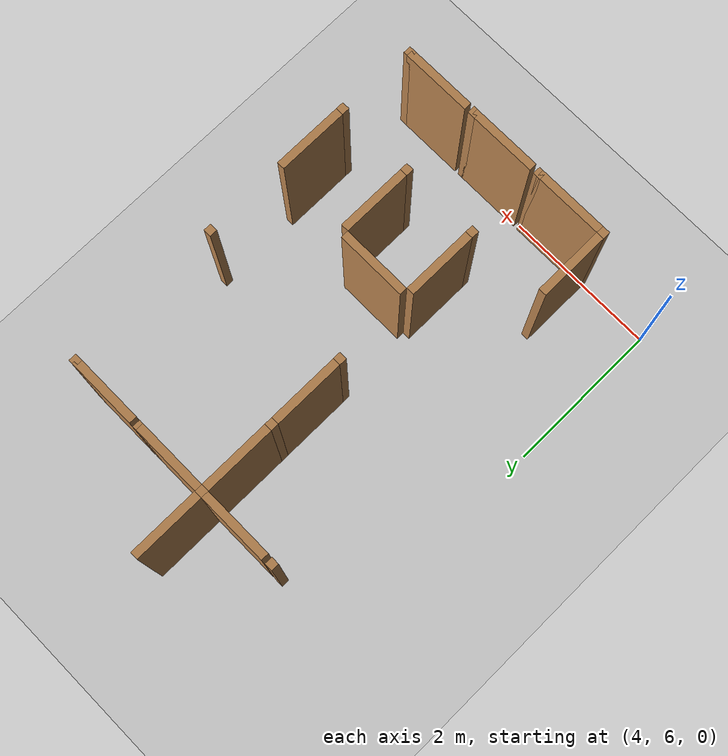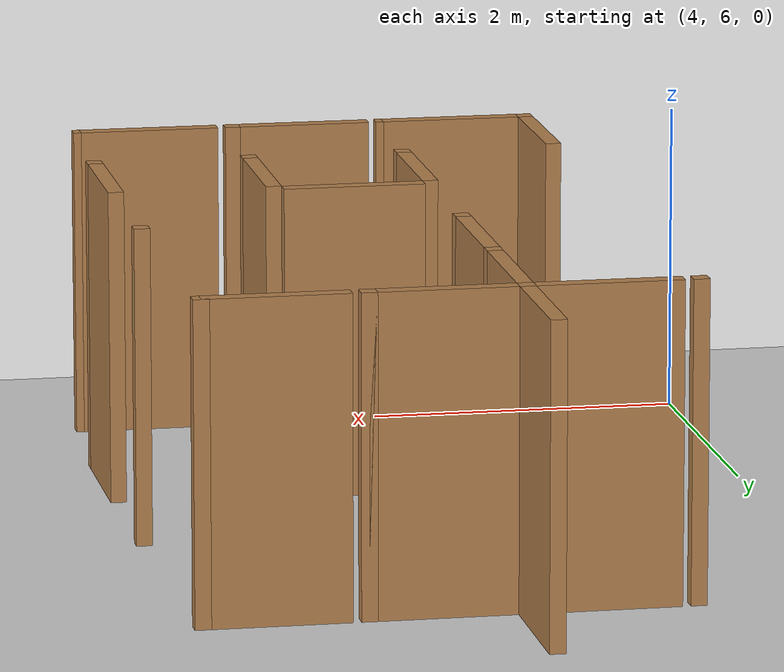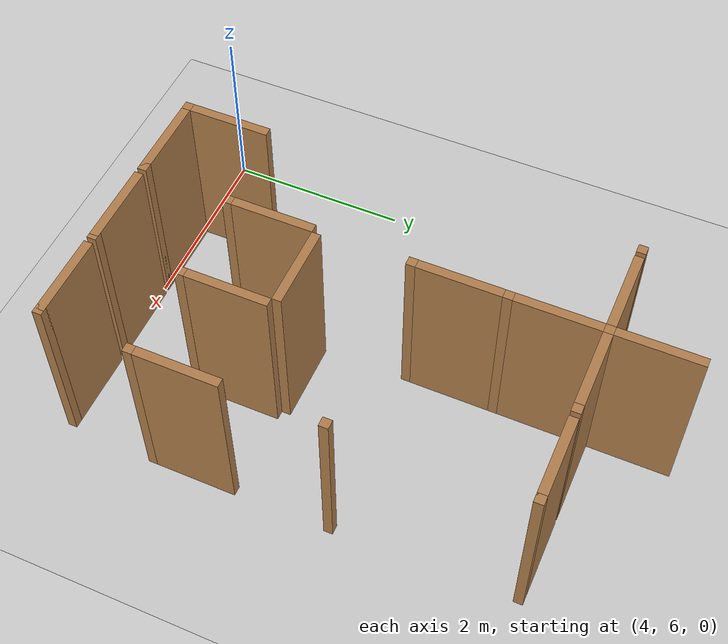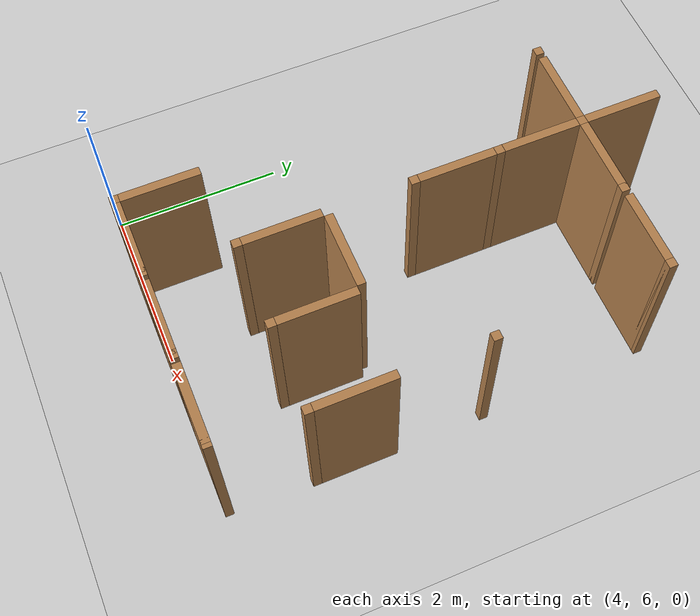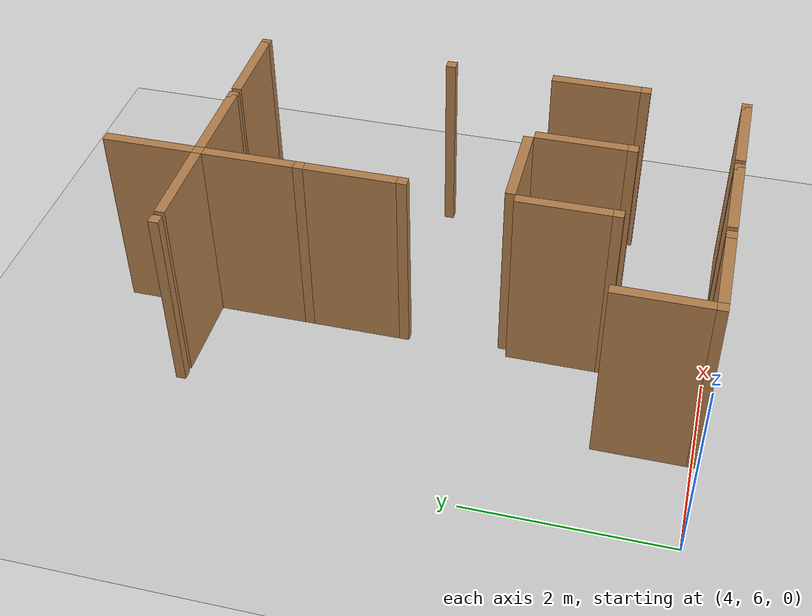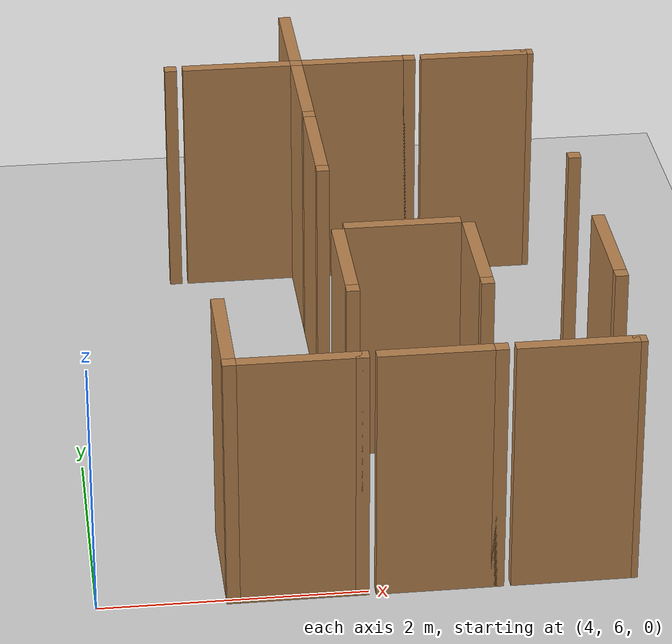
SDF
<sdf version="1.6">
 <world name="default">
  <include><uri>model://sun</uri></include>
  <model name="ground_plane">
   <static>true</static>
   <link name="link">
    <collision name="collision"><geometry><plane><size>12.0 12.0</size></plane></geometry></collision>
    <visual name="visual">
     <cast_shadows>false</cast_shadows>
     <geometry><plane><size>12.0 12.0</size></plane></geometry>
     <material>
      <script><uri>file://media/materials/scripts/gazebo.material</uri><name>Gazebo/Grey</name></script>
     </material>
    </visual>
   </link>
   <pose>6.0 6.0 0 0 0 0</pose>
  </model>
  <model name="vwall_6_5">
   <pose>5.0 6.5 1.0 0 0 0</pose>
   <link name="link">
    <collision name="collision"><geometry><box><size>0.1 0.9 2</size></box></geometry></collision>
    <visual name="visual">
     <geometry><box><size>0.1 0.9 2</size></box></geometry>
     <material>
      <script><uri>file://media/materials/scripts/gazebo.material</uri><name>Gazebo/Wood</name></script>
     </material>
    </visual>
   </link>
  </model>
  <model name="joint_5.0_6.0">
   <pose>5.0 6.0 1.0 0 0 0</pose>
   <link name="link">
    <collision name="collision"><geometry><box><size>0.1 0.1 2</size></box></geometry></collision>
    <visual name="visual">
     <geometry><box><size>0.1 0.1 2</size></box></geometry>
     <material>
      <script><uri>file://media/materials/scripts/gazebo.material</uri><name>Gazebo/Wood</name></script>
     </material>
    </visual>
   </link>
  </model>
  <model name="vwall_7_6">
   <pose>6.0 7.5 1.0 0 0 0</pose>
   <link name="link">
    <collision name="collision"><geometry><box><size>0.1 0.9 2</size></box></geometry></collision>
    <visual name="visual">
     <geometry><box><size>0.1 0.9 2</size></box></geometry>
     <material>
      <script><uri>file://media/materials/scripts/gazebo.material</uri><name>Gazebo/Wood</name></script>
     </material>
    </visual>
   </link>
  </model>
  <model name="joint_6.0_7.0">
   <pose>6.0 7.0 1.0 0 0 0</pose>
   <link name="link">
    <collision name="collision"><geometry><box><size>0.1 0.1 2</size></box></geometry></collision>
    <visual name="visual">
     <geometry><box><size>0.1 0.1 2</size></box></geometry>
     <material>
      <script><uri>file://media/materials/scripts/gazebo.material</uri><name>Gazebo/Wood</name></script>
     </material>
    </visual>
   </link>
  </model>
  <model name="vwall_7_7">
   <pose>7.0 7.5 1.0 0 0 0</pose>
   <link name="link">
    <collision name="collision"><geometry><box><size>0.1 0.9 2</size></box></geometry></collision>
    <visual name="visual">
     <geometry><box><size>0.1 0.9 2</size></box></geometry>
     <material>
      <script><uri>file://media/materials/scripts/gazebo.material</uri><name>Gazebo/Wood</name></script>
     </material>
    </visual>
   </link>
  </model>
  <model name="joint_7.0_7.0">
   <pose>7.0 7.0 1.0 0 0 0</pose>
   <link name="link">
    <collision name="collision"><geometry><box><size>0.1 0.1 2</size></box></geometry></collision>
    <visual name="visual">
     <geometry><box><size>0.1 0.1 2</size></box></geometry>
     <material>
      <script><uri>file://media/materials/scripts/gazebo.material</uri><name>Gazebo/Wood</name></script>
     </material>
    </visual>
   </link>
  </model>
  <model name="vwall_7_8">
   <pose>8.0 7.5 1.0 0 0 0</pose>
   <link name="link">
    <collision name="collision"><geometry><box><size>0.1 0.9 2</size></box></geometry></collision>
    <visual name="visual">
     <geometry><box><size>0.1 0.9 2</size></box></geometry>
     <material>
      <script><uri>file://media/materials/scripts/gazebo.material</uri><name>Gazebo/Wood</name></script>
     </material>
    </visual>
   </link>
  </model>
  <model name="joint_8.0_7.0">
   <pose>8.0 7.0 1.0 0 0 0</pose>
   <link name="link">
    <collision name="collision"><geometry><box><size>0.1 0.1 2</size></box></geometry></collision>
    <visual name="visual">
     <geometry><box><size>0.1 0.1 2</size></box></geometry>
     <material>
      <script><uri>file://media/materials/scripts/gazebo.material</uri><name>Gazebo/Wood</name></script>
     </material>
    </visual>
   </link>
  </model>
  <model name="vwall_9_6">
   <pose>6.0 9.5 1.0 0 0 0</pose>
   <link name="link">
    <collision name="collision"><geometry><box><size>0.1 0.9 2</size></box></geometry></collision>
    <visual name="visual">
     <geometry><box><size>0.1 0.9 2</size></box></geometry>
     <material>
      <script><uri>file://media/materials/scripts/gazebo.material</uri><name>Gazebo/Wood</name></script>
     </material>
    </visual>
   </link>
  </model>
  <model name="joint_6.0_9.0">
   <pose>6.0 9.0 1.0 0 0 0</pose>
   <link name="link">
    <collision name="collision"><geometry><box><size>0.1 0.1 2</size></box></geometry></collision>
    <visual name="visual">
     <geometry><box><size>0.1 0.1 2</size></box></geometry>
     <material>
      <script><uri>file://media/materials/scripts/gazebo.material</uri><name>Gazebo/Wood</name></script>
     </material>
    </visual>
   </link>
  </model>
  <model name="joint_8.0_9.0">
   <pose>8.0 9.0 1.0 0 0 0</pose>
   <link name="link">
    <collision name="collision"><geometry><box><size>0.1 0.1 2</size></box></geometry></collision>
    <visual name="visual">
     <geometry><box><size>0.1 0.1 2</size></box></geometry>
     <material>
      <script><uri>file://media/materials/scripts/gazebo.material</uri><name>Gazebo/Wood</name></script>
     </material>
    </visual>
   </link>
  </model>
  <model name="vwall_10_6">
   <pose>6.0 10.5 1.0 0 0 0</pose>
   <link name="link">
    <collision name="collision"><geometry><box><size>0.1 0.9 2</size></box></geometry></collision>
    <visual name="visual">
     <geometry><box><size>0.1 0.9 2</size></box></geometry>
     <material>
      <script><uri>file://media/materials/scripts/gazebo.material</uri><name>Gazebo/Wood</name></script>
     </material>
    </visual>
   </link>
  </model>
  <model name="joint_6.0_10.0">
   <pose>6.0 10.0 1.0 0 0 0</pose>
   <link name="link">
    <collision name="collision"><geometry><box><size>0.1 0.1 2</size></box></geometry></collision>
    <visual name="visual">
     <geometry><box><size>0.1 0.1 2</size></box></geometry>
     <material>
      <script><uri>file://media/materials/scripts/gazebo.material</uri><name>Gazebo/Wood</name></script>
     </material>
    </visual>
   </link>
  </model>
  <model name="vwall_11_6">
   <pose>6.0 11.5 1.0 0 0 0</pose>
   <link name="link">
    <collision name="collision"><geometry><box><size>0.1 0.9 2</size></box></geometry></collision>
    <visual name="visual">
     <geometry><box><size>0.1 0.9 2</size></box></geometry>
     <material>
      <script><uri>file://media/materials/scripts/gazebo.material</uri><name>Gazebo/Wood</name></script>
     </material>
    </visual>
   </link>
  </model>
  <model name="joint_6.0_11.0">
   <pose>6.0 11.0 1.0 0 0 0</pose>
   <link name="link">
    <collision name="collision"><geometry><box><size>0.1 0.1 2</size></box></geometry></collision>
    <visual name="visual">
     <geometry><box><size>0.1 0.1 2</size></box></geometry>
     <material>
      <script><uri>file://media/materials/scripts/gazebo.material</uri><name>Gazebo/Wood</name></script>
     </material>
    </visual>
   </link>
  </model>
  <model name="hwall_6_5">
   <pose>5.5 6.0 1.0 0 0 0</pose>
   <link name="link">
    <collision name="collision"><geometry><box><size>0.9 0.1 2</size></box></geometry></collision>
    <visual name="visual">
     <geometry><box><size>0.9 0.1 2</size></box></geometry>
     <material>
      <script><uri>file://media/materials/scripts/gazebo.material</uri><name>Gazebo/Wood</name></script>
     </material>
    </visual>
   </link>
  </model>
  <model name="joint_5.95_6.0">
   <pose>5.95 6.0 1.0 0 0 0</pose>
   <link name="link">
    <collision name="collision"><geometry><box><size>0.1 0.1 2</size></box></geometry></collision>
    <visual name="visual">
     <geometry><box><size>0.1 0.1 2</size></box></geometry>
     <material>
      <script><uri>file://media/materials/scripts/gazebo.material</uri><name>Gazebo/Wood</name></script>
     </material>
    </visual>
   </link>
  </model>
  <model name="hwall_6_6">
   <pose>6.5 6.0 1.0 0 0 0</pose>
   <link name="link">
    <collision name="collision"><geometry><box><size>0.9 0.1 2</size></box></geometry></collision>
    <visual name="visual">
     <geometry><box><size>0.9 0.1 2</size></box></geometry>
     <material>
      <script><uri>file://media/materials/scripts/gazebo.material</uri><name>Gazebo/Wood</name></script>
     </material>
    </visual>
   </link>
  </model>
  <model name="joint_6.95_6.0">
   <pose>6.95 6.0 1.0 0 0 0</pose>
   <link name="link">
    <collision name="collision"><geometry><box><size>0.1 0.1 2</size></box></geometry></collision>
    <visual name="visual">
     <geometry><box><size>0.1 0.1 2</size></box></geometry>
     <material>
      <script><uri>file://media/materials/scripts/gazebo.material</uri><name>Gazebo/Wood</name></script>
     </material>
    </visual>
   </link>
  </model>
  <model name="hwall_6_7">
   <pose>7.5 6.0 1.0 0 0 0</pose>
   <link name="link">
    <collision name="collision"><geometry><box><size>0.9 0.1 2</size></box></geometry></collision>
    <visual name="visual">
     <geometry><box><size>0.9 0.1 2</size></box></geometry>
     <material>
      <script><uri>file://media/materials/scripts/gazebo.material</uri><name>Gazebo/Wood</name></script>
     </material>
    </visual>
   </link>
  </model>
  <model name="joint_7.95_6.0">
   <pose>7.95 6.0 1.0 0 0 0</pose>
   <link name="link">
    <collision name="collision"><geometry><box><size>0.1 0.1 2</size></box></geometry></collision>
    <visual name="visual">
     <geometry><box><size>0.1 0.1 2</size></box></geometry>
     <material>
      <script><uri>file://media/materials/scripts/gazebo.material</uri><name>Gazebo/Wood</name></script>
     </material>
    </visual>
   </link>
  </model>
  <model name="hwall_8_6">
   <pose>6.5 8.0 1.0 0 0 0</pose>
   <link name="link">
    <collision name="collision"><geometry><box><size>0.9 0.1 2</size></box></geometry></collision>
    <visual name="visual">
     <geometry><box><size>0.9 0.1 2</size></box></geometry>
     <material>
      <script><uri>file://media/materials/scripts/gazebo.material</uri><name>Gazebo/Wood</name></script>
     </material>
    </visual>
   </link>
  </model>
  <model name="joint_4.95_11.0">
   <pose>4.95 11.0 1.0 0 0 0</pose>
   <link name="link">
    <collision name="collision"><geometry><box><size>0.1 0.1 2</size></box></geometry></collision>
    <visual name="visual">
     <geometry><box><size>0.1 0.1 2</size></box></geometry>
     <material>
      <script><uri>file://media/materials/scripts/gazebo.material</uri><name>Gazebo/Wood</name></script>
     </material>
    </visual>
   </link>
  </model>
  <model name="hwall_11_5">
   <pose>5.5 11.0 1.0 0 0 0</pose>
   <link name="link">
    <collision name="collision"><geometry><box><size>0.9 0.1 2</size></box></geometry></collision>
    <visual name="visual">
     <geometry><box><size>0.9 0.1 2</size></box></geometry>
     <material>
      <script><uri>file://media/materials/scripts/gazebo.material</uri><name>Gazebo/Wood</name></script>
     </material>
    </visual>
   </link>
  </model>
  <model name="hwall_11_6">
   <pose>6.5 11.0 1.0 0 0 0</pose>
   <link name="link">
    <collision name="collision"><geometry><box><size>0.9 0.1 2</size></box></geometry></collision>
    <visual name="visual">
     <geometry><box><size>0.9 0.1 2</size></box></geometry>
     <material>
      <script><uri>file://media/materials/scripts/gazebo.material</uri><name>Gazebo/Wood</name></script>
     </material>
    </visual>
   </link>
  </model>
  <model name="joint_6.95_11.0">
   <pose>6.95 11.0 1.0 0 0 0</pose>
   <link name="link">
    <collision name="collision"><geometry><box><size>0.1 0.1 2</size></box></geometry></collision>
    <visual name="visual">
     <geometry><box><size>0.1 0.1 2</size></box></geometry>
     <material>
      <script><uri>file://media/materials/scripts/gazebo.material</uri><name>Gazebo/Wood</name></script>
     </material>
    </visual>
   </link>
  </model>
  <model name="hwall_11_7">
   <pose>7.5 11.0 1.0 0 0 0</pose>
   <link name="link">
    <collision name="collision"><geometry><box><size>0.9 0.1 2</size></box></geometry></collision>
    <visual name="visual">
     <geometry><box><size>0.9 0.1 2</size></box></geometry>
     <material>
      <script><uri>file://media/materials/scripts/gazebo.material</uri><name>Gazebo/Wood</name></script>
     </material>
    </visual>
   </link>
  </model>
  <model name="joint_7.95_11.0">
   <pose>7.95 11.0 1.0 0 0 0</pose>
   <link name="link">
    <collision name="collision"><geometry><box><size>0.1 0.1 2</size></box></geometry></collision>
    <visual name="visual">
     <geometry><box><size>0.1 0.1 2</size></box></geometry>
     <material>
      <script><uri>file://media/materials/scripts/gazebo.material</uri><name>Gazebo/Wood</name></script>
     </material>
    </visual>
   </link>
  </model>
 </world>
</sdf>
